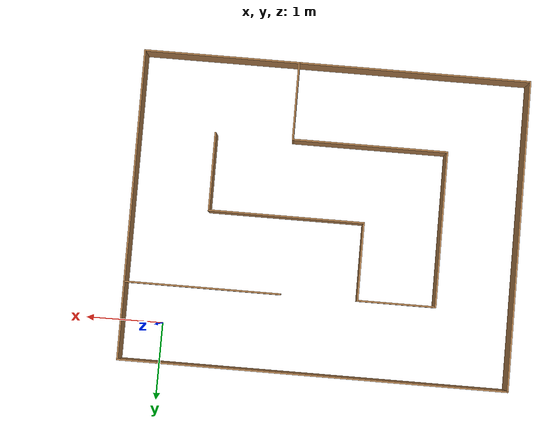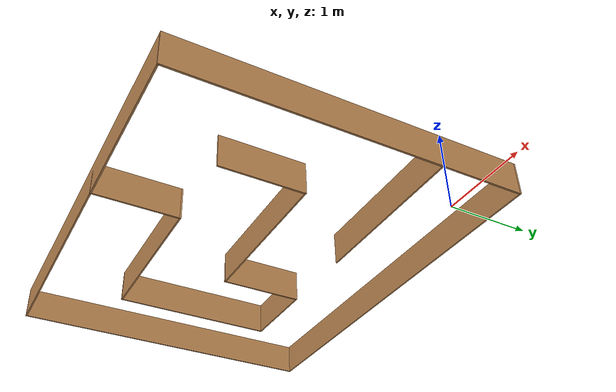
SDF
<?xml version='1.0'?>
<sdf version='1.7'>
  <model name='maze_24b'>
    <pose>-2 -1.5 0 0 -0 0</pose>
    <link name='Wall_0'>
      <collision name='Wall_0_Collision'>
        <geometry>
          <box>
            <size>5.02 0.02 0.4</size>
          </box>
        </geometry>
        <pose>0 0 0.2 0 -0 0</pose>
      </collision>
      <visual name='Wall_0_Visual'>
        <pose>0 0 0.2 0 -0 0</pose>
        <geometry>
          <box>
            <size>5.02 0.02 0.4</size>
          </box>
        </geometry>
        <material>
          <script>
            <uri>file://media/materials/scripts/gazebo.material</uri>
            <name>Gazebo/Wood</name>
          </script>
          <ambient>1 1 1 1</ambient>
        </material>
        <meta>
          <layer>0</layer>
        </meta>
      </visual>
      <pose>0 2 0 0 -0 3.14159</pose>
    </link>
    <link name='Wall_10'>
      <collision name='Wall_10_Collision'>
        <geometry>
          <box>
            <size>2.02 0.02 0.4</size>
          </box>
        </geometry>
        <pose>0 0 0.2 0 -0 0</pose>
      </collision>
      <visual name='Wall_10_Visual'>
        <pose>0 0 0.2 0 -0 0</pose>
        <geometry>
          <box>
            <size>2.02 0.02 0.4</size>
          </box>
        </geometry>
        <material>
          <script>
            <uri>file://media/materials/scripts/gazebo.material</uri>
            <name>Gazebo/Wood</name>
          </script>
          <ambient>1 1 1 1</ambient>
        </material>
        <meta>
          <layer>0</layer>
        </meta>
      </visual>
      <pose>-0.5 -1 0 0 -0 3.14159</pose>
    </link>
    <link name='Wall_12'>
      <collision name='Wall_12_Collision'>
        <geometry>
          <box>
            <size>2.02 0.02 0.4</size>
          </box>
        </geometry>
        <pose>0 0 0.2 0 -0 0</pose>
      </collision>
      <visual name='Wall_12_Visual'>
        <pose>0 0 0.2 0 -0 0</pose>
        <geometry>
          <box>
            <size>2.02 0.02 0.4</size>
          </box>
        </geometry>
        <material>
          <script>
            <uri>file://media/materials/scripts/gazebo.material</uri>
            <name>Gazebo/Wood</name>
          </script>
          <ambient>1 1 1 1</ambient>
        </material>
        <meta>
          <layer>0</layer>
        </meta>
      </visual>
      <pose>-1.5 0 0 0 -0 1.5708</pose>
    </link>
    <link name='Wall_14'>
      <collision name='Wall_14_Collision'>
        <geometry>
          <box>
            <size>1.02 0.02 0.4</size>
          </box>
        </geometry>
        <pose>0 0 0.2 0 -0 0</pose>
      </collision>
      <visual name='Wall_14_Visual'>
        <pose>0 0 0.2 0 -0 0</pose>
        <geometry>
          <box>
            <size>1.02 0.02 0.4</size>
          </box>
        </geometry>
        <material>
          <script>
            <uri>file://media/materials/scripts/gazebo.material</uri>
            <name>Gazebo/Wood</name>
          </script>
          <ambient>1 1 1 1</ambient>
        </material>
        <meta>
          <layer>0</layer>
        </meta>
      </visual>
      <pose>-1 1 0 0 -0 0</pose>
    </link>
    <link name='Wall_17'>
      <collision name='Wall_17_Collision'>
        <geometry>
          <box>
            <size>1.02 0.02 0.4</size>
          </box>
        </geometry>
        <pose>0 0 0.2 0 -0 0</pose>
      </collision>
      <visual name='Wall_17_Visual'>
        <pose>0 0 0.2 0 -0 0</pose>
        <geometry>
          <box>
            <size>1.02 0.02 0.4</size>
          </box>
        </geometry>
        <material>
          <script>
            <uri>file://media/materials/scripts/gazebo.material</uri>
            <name>Gazebo/Wood</name>
          </script>
          <ambient>1 1 1 1</ambient>
        </material>
        <meta>
          <layer>0</layer>
        </meta>
      </visual>
      <pose>-0.5 0.5 0 0 -0 -1.5708</pose>
    </link>
    <link name='Wall_19'>
      <collision name='Wall_19_Collision'>
        <geometry>
          <box>
            <size>2.02 0.02 0.4</size>
          </box>
        </geometry>
        <pose>0 0 0.2 0 -0 0</pose>
      </collision>
      <visual name='Wall_19_Visual'>
        <pose>0 0 0.2 0 -0 0</pose>
        <geometry>
          <box>
            <size>2.02 0.02 0.4</size>
          </box>
        </geometry>
        <material>
          <script>
            <uri>file://media/materials/scripts/gazebo.material</uri>
            <name>Gazebo/Wood</name>
          </script>
          <ambient>1 1 1 1</ambient>
        </material>
        <meta>
          <layer>0</layer>
        </meta>
      </visual>
      <pose>0.5 0 0 0 -0 0</pose>
    </link>
    <link name='Wall_2'>
      <collision name='Wall_2_Collision'>
        <geometry>
          <box>
            <size>4.02 0.02 0.4</size>
          </box>
        </geometry>
        <pose>0 0 0.2 0 -0 0</pose>
      </collision>
      <visual name='Wall_2_Visual'>
        <pose>0 0 0.2 0 -0 0</pose>
        <geometry>
          <box>
            <size>4.02 0.02 0.4</size>
          </box>
        </geometry>
        <material>
          <script>
            <uri>file://media/materials/scripts/gazebo.material</uri>
            <name>Gazebo/Wood</name>
          </script>
          <ambient>1 1 1 1</ambient>
        </material>
        <meta>
          <layer>0</layer>
        </meta>
      </visual>
      <pose>-2.5 0 0 0 -0 -1.5708</pose>
    </link>
    <link name='Wall_21'>
      <collision name='Wall_21_Collision'>
        <geometry>
          <box>
            <size>1.02 0.02 0.4</size>
          </box>
        </geometry>
        <pose>0 0 0.2 0 -0 0</pose>
      </collision>
      <visual name='Wall_21_Visual'>
        <pose>0 0 0.2 0 -0 0</pose>
        <geometry>
          <box>
            <size>1.02 0.02 0.4</size>
          </box>
        </geometry>
        <material>
          <script>
            <uri>file://media/materials/scripts/gazebo.material</uri>
            <name>Gazebo/Wood</name>
          </script>
          <ambient>1 1 1 1</ambient>
        </material>
        <meta>
          <layer>0</layer>
        </meta>
      </visual>
      <pose>1.5 -0.5 0 0 -0 -1.5708</pose>
    </link>
    <link name='Wall_23'>
      <collision name='Wall_23_Collision'>
        <geometry>
          <box>
            <size>2.02 0.02 0.4</size>
          </box>
        </geometry>
        <pose>0 0 0.2 0 -0 0</pose>
      </collision>
      <visual name='Wall_23_Visual'>
        <pose>0 0 0.2 0 -0 0</pose>
        <geometry>
          <box>
            <size>2.02 0.02 0.4</size>
          </box>
        </geometry>
        <material>
          <script>
            <uri>file://media/materials/scripts/gazebo.material</uri>
            <name>Gazebo/Wood</name>
          </script>
          <ambient>1 1 1 1</ambient>
        </material>
        <meta>
          <layer>0</layer>
        </meta>
      </visual>
      <pose>1.5 1 0 0 -0 0</pose>
    </link>
    <link name='Wall_4'>
      <collision name='Wall_4_Collision'>
        <geometry>
          <box>
            <size>5.02 0.02 0.4</size>
          </box>
        </geometry>
        <pose>0 0 0.2 0 -0 0</pose>
      </collision>
      <visual name='Wall_4_Visual'>
        <pose>0 0 0.2 0 -0 0</pose>
        <geometry>
          <box>
            <size>5.02 0.02 0.4</size>
          </box>
        </geometry>
        <material>
          <script>
            <uri>file://media/materials/scripts/gazebo.material</uri>
            <name>Gazebo/Wood</name>
          </script>
          <ambient>1 1 1 1</ambient>
        </material>
        <meta>
          <layer>0</layer>
        </meta>
      </visual>
      <pose>0 -2 0 0 -0 0</pose>
    </link>
    <link name='Wall_6'>
      <collision name='Wall_6_Collision'>
        <geometry>
          <box>
            <size>4.02 0.02 0.4</size>
          </box>
        </geometry>
        <pose>0 0 0.2 0 -0 0</pose>
      </collision>
      <visual name='Wall_6_Visual'>
        <pose>0 0 0.2 0 -0 0</pose>
        <geometry>
          <box>
            <size>4.02 0.02 0.4</size>
          </box>
        </geometry>
        <material>
          <script>
            <uri>file://media/materials/scripts/gazebo.material</uri>
            <name>Gazebo/Wood</name>
          </script>
          <ambient>1 1 1 1</ambient>
        </material>
        <meta>
          <layer>0</layer>
        </meta>
      </visual>
      <pose>2.5 0 0 0 -0 1.5708</pose>
    </link>
    <link name='Wall_8'>
      <collision name='Wall_8_Collision'>
        <geometry>
          <box>
            <size>1.02 0.02 0.4</size>
          </box>
        </geometry>
        <pose>0 0 0.2 0 -0 0</pose>
      </collision>
      <visual name='Wall_8_Visual'>
        <pose>0 0 0.2 0 -0 0</pose>
        <geometry>
          <box>
            <size>1.02 0.02 0.4</size>
          </box>
        </geometry>
        <material>
          <script>
            <uri>file://media/materials/scripts/gazebo.material</uri>
            <name>Gazebo/Wood</name>
          </script>
          <ambient>1 1 1 1</ambient>
        </material>
        <meta>
          <layer>0</layer>
        </meta>
      </visual>
      <pose>0.5 -1.5 0 0 -0 1.5708</pose>
    </link>
    <static>1</static>
  </model>
</sdf>
